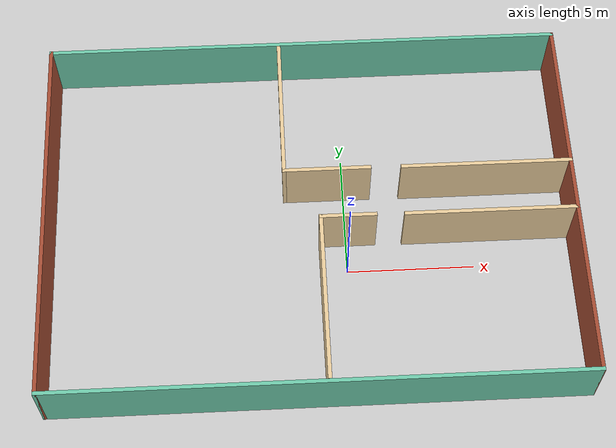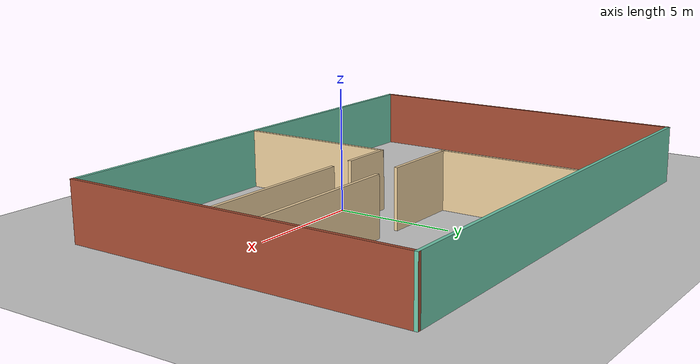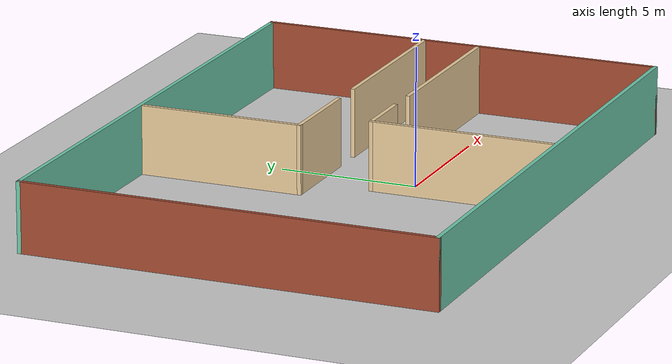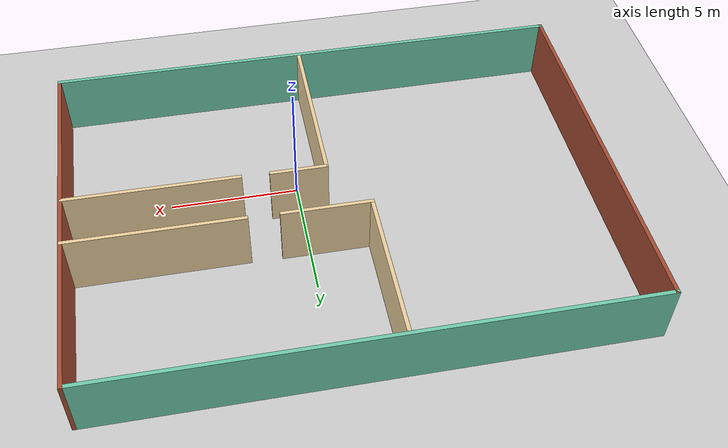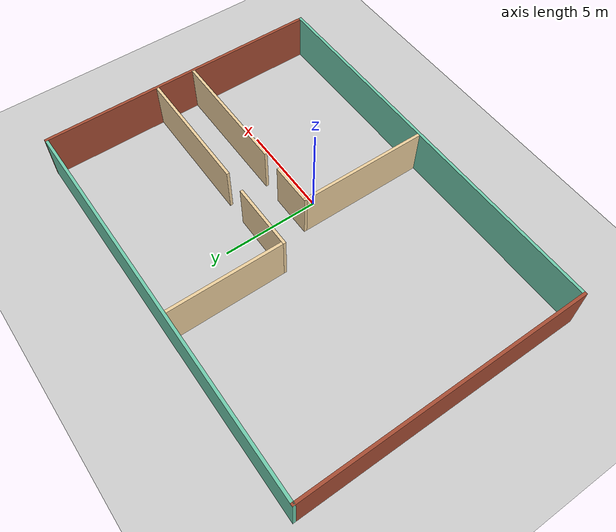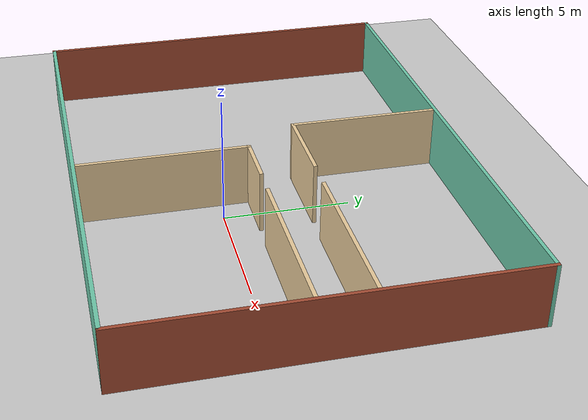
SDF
<sdf version="1.6">
 <world name="default">
  <light name="sun" type="directional">
   <pose>0 0 10 0 -0 0</pose>
   <diffuse>0.8 0.8 0.8 1</diffuse>
   <specular>0.2 0.2 0.2 1</specular>
   <attenuation>
    <range>1000</range>
    <constant>0.9</constant>
    <linear>0.01</linear>
    <quadratic>0.001</quadratic>
   </attenuation>
   <direction>-0.5 0.1 -0.9</direction>
  </light>
  <model name="ground_plane">
   <static>1</static>
   <link name="link">
    <collision name="collision">
     <geometry><plane><normal>0 0 1</normal><size>100 100</size></plane></geometry>
     <surface>
      <contact><collide_bitmask>65535</collide_bitmask></contact>
      <friction><ode><mu>100</mu><mu2>50</mu2></ode></friction>
     </surface>
    </collision>
    <visual name="visual">
     <cast_shadows>0</cast_shadows>
     <geometry><plane><normal>0 0 1</normal><size>100 100</size></plane></geometry>
     <material>
      <script><uri>file://media/materials/scripts/gazebo.material</uri><name>Gazebo/Grey</name></script>
     </material>
    </visual>
   </link>
  </model>
  <gravity>0 0 -9.8</gravity>
  <magnetic_field>6e-06 2.3e-05 -4.2e-05</magnetic_field>
  <atmosphere type="adiabatic"/>
  <physics name="default_physics" default="0" type="ode">
   <max_step_size>0.001</max_step_size>
   <real_time_factor>1</real_time_factor>
   <real_time_update_rate>1000</real_time_update_rate>
  </physics>
  <scene><ambient>0.4 0.4 0.4 1</ambient><background>0.7 0.7 0.7 1</background><shadows>1</shadows></scene>
  <audio><device>default</device></audio>
  <spherical_coordinates>
   <surface_model>EARTH_WGS84</surface_model>
   <latitude_deg>0</latitude_deg>
   <longitude_deg>0</longitude_deg>
   <elevation>0</elevation>
   <heading_deg>0</heading_deg>
  </spherical_coordinates>
  <model name="new_world">
   <pose>-1.37024 1.90415 0 0 -0 0</pose>
   <link name="Wall_11">
    <collision name="Wall_11_Collision">
     <geometry><box><size>2.25 0.15 2.5</size></box></geometry>
     <pose>0 0 1.25 0 -0 0</pose>
    </collision>
    <visual name="Wall_11_Visual">
     <pose>0 0 1.25 0 -0 0</pose>
     <geometry><box><size>2.25 0.15 2.5</size></box></geometry>
     <material>
      <script><uri>file://media/materials/scripts/gazebo.material</uri><name>Gazebo/Grey</name></script>
      <ambient>0.921569 0.807843 0.615686 1</ambient>
     </material>
     <meta><layer>0</layer></meta>
    </visual>
    <pose>1.415 -0.671 0 0 -0 3.14159</pose>
   </link>
   <link name="Wall_12">
    <collision name="Wall_12_Collision">
     <geometry><box><size>6.75 0.15 2.5</size></box></geometry>
     <pose>0 0 1.25 0 -0 0</pose>
    </collision>
    <visual name="Wall_12_Visual">
     <pose>0 0 1.25 0 -0 0</pose>
     <geometry><box><size>6.75 0.15 2.5</size></box></geometry>
     <material>
      <script><uri>file://media/materials/scripts/gazebo.material</uri><name>Gazebo/Grey</name></script>
      <ambient>0.921569 0.807843 0.615686 1</ambient>
     </material>
     <meta><layer>0</layer></meta>
    </visual>
    <pose>0.365 -3.971 0 0 -0 -1.5708</pose>
   </link>
   <link name="Wall_14">
    <collision name="Wall_14_Collision">
     <geometry><box><size>6.75 0.15 2.5</size></box></geometry>
     <pose>0 0 1.25 0 -0 0</pose>
    </collision>
    <visual name="Wall_14_Visual">
     <pose>0 0 1.25 0 -0 0</pose>
     <geometry><box><size>6.75 0.15 2.5</size></box></geometry>
     <material>
      <script><uri>file://media/materials/scripts/gazebo.material</uri><name>Gazebo/Grey</name></script>
      <ambient>0.921569 0.807843 0.615686 1</ambient>
     </material>
     <meta><layer>0</layer></meta>
    </visual>
    <pose>6.985 1.399 0 0 -0 3.14159</pose>
   </link>
   <link name="Wall_16">
    <collision name="Wall_16_Collision">
     <geometry><box><size>3.5 0.15 2.5</size></box></geometry>
     <pose>0 0 1.25 0 -0 0</pose>
    </collision>
    <visual name="Wall_16_Visual">
     <pose>0 0 1.25 0 -0 0</pose>
     <geometry><box><size>3.5 0.15 2.5</size></box></geometry>
     <material>
      <script><uri>file://media/materials/scripts/gazebo.material</uri><name>Gazebo/Grey</name></script>
      <ambient>0.921569 0.807843 0.615686 1</ambient>
     </material>
     <meta><layer>0</layer></meta>
    </visual>
    <pose>0.698 1.422 0 0 -0 3.14159</pose>
   </link>
   <link name="Wall_17">
    <collision name="Wall_17_Collision">
     <geometry><box><size>6 0.15 2.5</size></box></geometry>
     <pose>0 0 1.25 0 -0 0</pose>
    </collision>
    <visual name="Wall_17_Visual">
     <pose>0 0 1.25 0 -0 0</pose>
     <geometry><box><size>6 0.15 2.5</size></box></geometry>
     <material>
      <script><uri>file://media/materials/scripts/gazebo.material</uri><name>Gazebo/Grey</name></script>
      <ambient>0.921569 0.807843 0.615686 1</ambient>
     </material>
     <meta><layer>0</layer></meta>
    </visual>
    <pose>-0.977 4.347 0 0 -0 1.5708</pose>
   </link>
   <link name="Wall_3">
    <collision name="Wall_3_Collision">
     <geometry><box><size>15 0.15 2.5</size></box></geometry>
     <pose>0 0 1.25 0 -0 0</pose>
    </collision>
    <visual name="Wall_3_Visual">
     <pose>0 0 1.25 0 -0 0</pose>
     <geometry><box><size>15 0.15 2.5</size></box></geometry>
     <material>
      <script><uri>file://media/materials/scripts/gazebo.material</uri><name>Gazebo/Bricks</name></script>
      <ambient>1 1 1 1</ambient>
     </material>
     <meta><layer>0</layer></meta>
    </visual>
    <pose>-10.3 -0 0 0 -0 -1.5708</pose>
   </link>
   <link name="Wall_4">
    <collision name="Wall_4_Collision">
     <geometry><box><size>20.75 0.15 2.5</size></box></geometry>
     <pose>0 0 1.25 0 -0 0</pose>
    </collision>
    <visual name="Wall_4_Visual">
     <pose>0 0 1.25 0 -0 0</pose>
     <geometry><box><size>20.75 0.15 2.5</size></box></geometry>
     <material>
      <script><uri>file://media/materials/scripts/gazebo.material</uri><name>Gazebo/Grey</name></script>
      <ambient>0.435294 0.796078 0.67451 1</ambient>
     </material>
     <meta><layer>0</layer></meta>
    </visual>
    <pose>0 -7.425 0 0 -0 0</pose>
   </link>
   <link name="Wall_5">
    <collision name="Wall_5_Collision">
     <geometry><box><size>15 0.15 2.5</size></box></geometry>
     <pose>0 0 1.25 0 -0 0</pose>
    </collision>
    <visual name="Wall_5_Visual">
     <pose>0 0 1.25 0 -0 0</pose>
     <geometry><box><size>15 0.15 2.5</size></box></geometry>
     <material>
      <script><uri>file://media/materials/scripts/gazebo.material</uri><name>Gazebo/Bricks</name></script>
      <ambient>1 1 1 1</ambient>
     </material>
     <meta><layer>0</layer></meta>
    </visual>
    <pose>10.3 -0 0 0 -0 1.5708</pose>
   </link>
   <link name="Wall_6">
    <collision name="Wall_6_Collision">
     <geometry><box><size>20.75 0.15 2.5</size></box></geometry>
     <pose>0 0 1.25 0 -0 0</pose>
    </collision>
    <visual name="Wall_6_Visual">
     <pose>0 0 1.25 0 -0 0</pose>
     <geometry><box><size>20.75 0.15 2.5</size></box></geometry>
     <material>
      <script><uri>file://media/materials/scripts/gazebo.material</uri><name>Gazebo/Grey</name></script>
      <ambient>0.435294 0.796078 0.67451 1</ambient>
     </material>
     <meta><layer>0</layer></meta>
    </visual>
    <pose>0 7.425 0 0 -0 3.14159</pose>
   </link>
   <link name="Wall_8">
    <collision name="Wall_8_Collision">
     <geometry><box><size>6.75 0.15 2.5</size></box></geometry>
     <pose>0 0 1.25 0 -0 0</pose>
    </collision>
    <visual name="Wall_8_Visual">
     <pose>0 0 1.25 0 -0 0</pose>
     <geometry><box><size>6.75 0.15 2.5</size></box></geometry>
     <material>
      <script><uri>file://media/materials/scripts/gazebo.material</uri><name>Gazebo/Grey</name></script>
      <ambient>0.921569 0.807843 0.615686 1</ambient>
     </material>
     <meta><layer>0</layer></meta>
    </visual>
    <pose>6.962 -0.694 0 0 -0 3.14159</pose>
   </link>
   <static>1</static>
  </model>
 </world>
</sdf>
